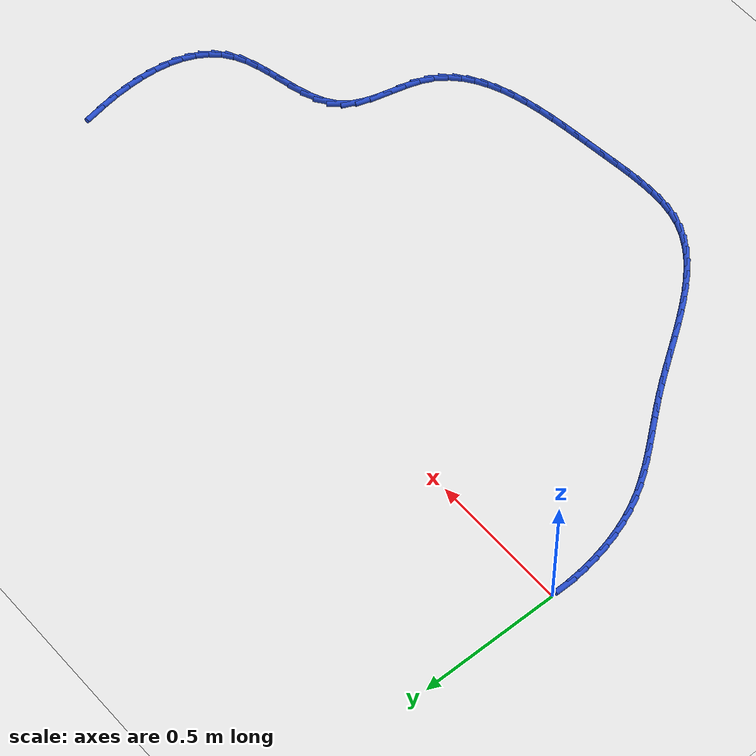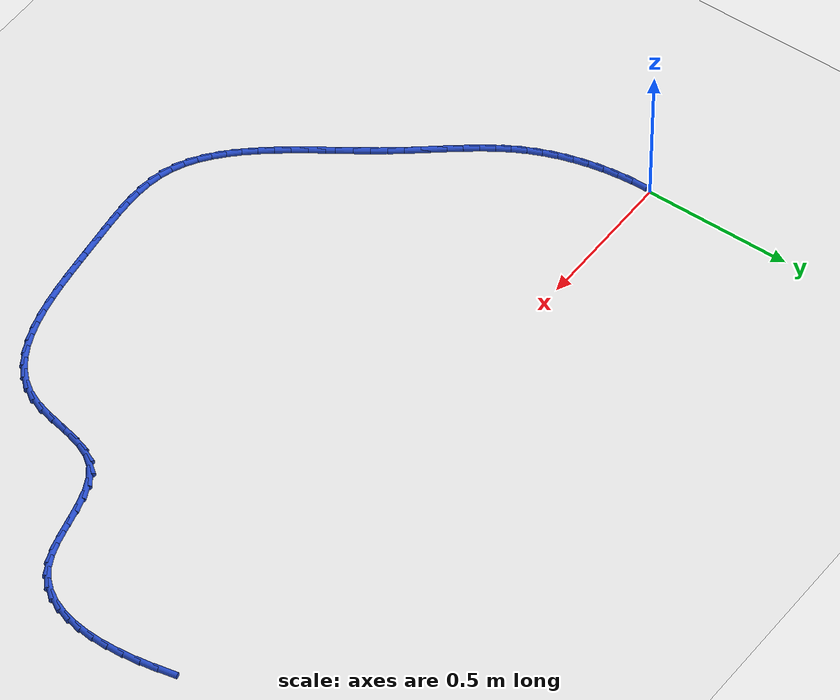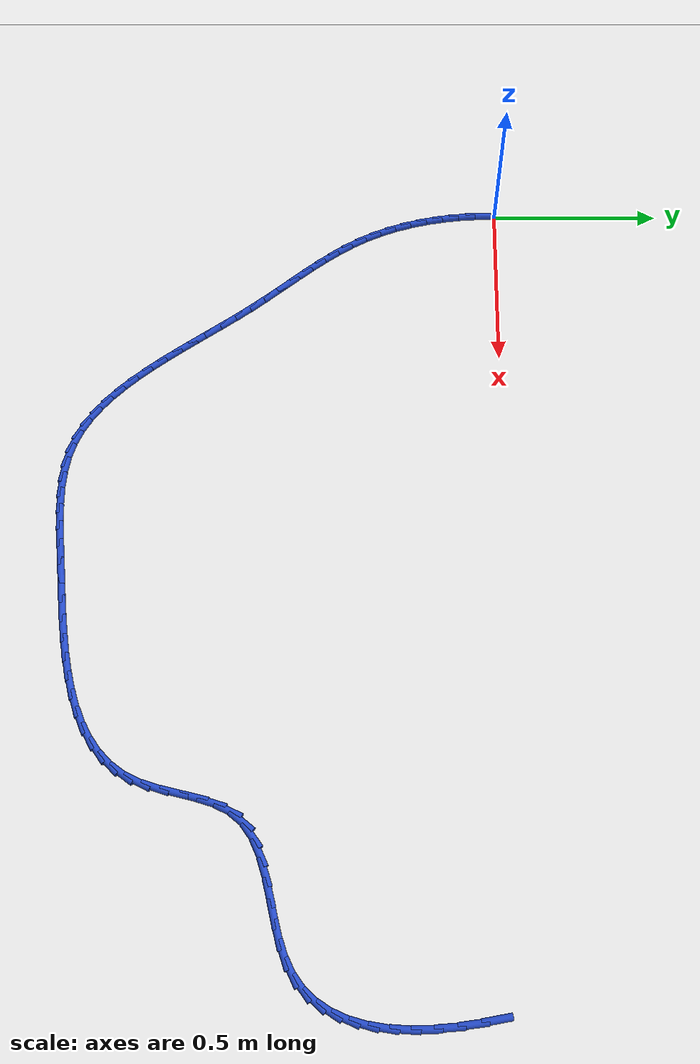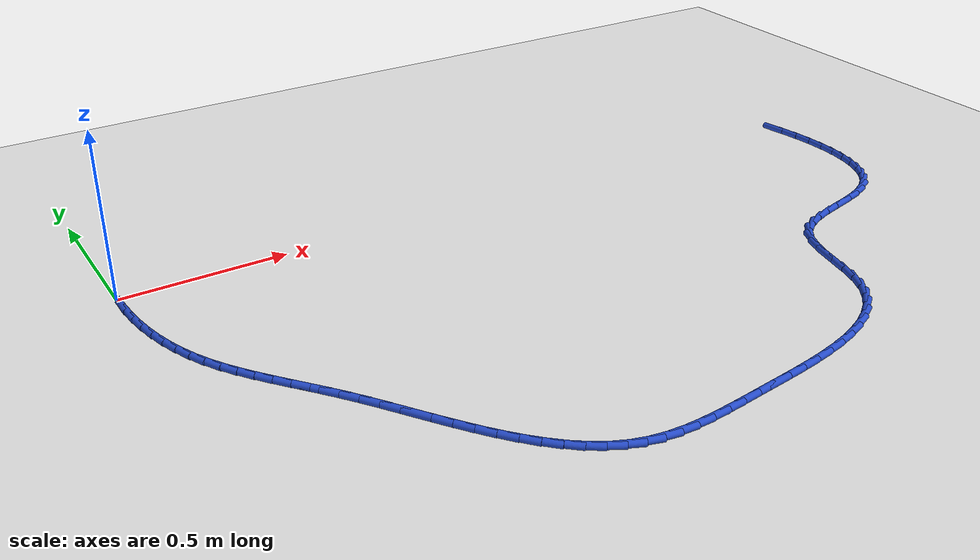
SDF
<sdf version="1.6">
 <world name="default">
  <model name="ground_plane">
   <static>1</static>
   <link name="link">
    <collision name="collision">
     <geometry><plane><normal>0 0 1</normal><size>100 100</size></plane></geometry>
     <surface><friction><ode><mu>100</mu><mu2>50</mu2></ode></friction></surface>
    </collision>
    <visual name="visual">
     <cast_shadows>0</cast_shadows>
     <geometry><plane><normal>0 0 1</normal><size>100 100</size></plane></geometry>
     <material>
      <script><uri>file://media/materials/scripts/gazebo.material</uri><name>Gazebo/WhiteGlow</name></script>
     </material>
    </visual>
   </link>
  </model>
  <model name="line">
   <link name="link_74">
    <pose>2.378009743541148 -0.061234600963595356 0.01 0 1.57 -1.391820217604714</pose>
    <collision name="collision">
     <geometry><cylinder><radius>0.01</radius><length>0.08</length></cylinder></geometry>
    </collision>
    <visual name="visual">
     <material>
      <script><name>Gazebo/Blue</name><uri>file://media/materials/scripts/gazebo.material</uri></script>
     </material>
     <geometry><cylinder><radius>0.01</radius><length>0.08</length></cylinder></geometry>
    </visual>
   </link>
   <link name="link_75">
    <pose>2.3886888158345 -0.12026372214924898 0.01 0 1.57 -1.4398469825482207</pose>
    <collision name="collision">
     <geometry><cylinder><radius>0.01</radius><length>0.08</length></cylinder></geometry>
    </collision>
    <visual name="visual">
     <material>
      <script><name>Gazebo/Blue</name><uri>file://media/materials/scripts/gazebo.material</uri></script>
     </material>
     <geometry><cylinder><radius>0.01</radius><length>0.08</length></cylinder></geometry>
    </visual>
   </link>
   <link name="link_76">
    <pose>2.396336699922956 -0.17833288971633787 0.01 0 1.57 -1.4959737840576777</pose>
    <collision name="collision">
     <geometry><cylinder><radius>0.01</radius><length>0.08</length></cylinder></geometry>
    </collision>
    <visual name="visual">
     <material>
      <script><name>Gazebo/Blue</name><uri>file://media/materials/scripts/gazebo.material</uri></script>
     </material>
     <geometry><cylinder><radius>0.01</radius><length>0.08</length></cylinder></geometry>
    </visual>
   </link>
   <link name="link_77">
    <pose>2.4005798901734186 -0.2349370729153797 0.01 0 1.57 -1.5622855437320609</pose>
    <collision name="collision">
     <geometry><cylinder><radius>0.01</radius><length>0.08</length></cylinder></geometry>
    </collision>
    <visual name="visual">
     <material>
      <script><name>Gazebo/Blue</name><uri>file://media/materials/scripts/gazebo.material</uri></script>
     </material>
     <geometry><cylinder><radius>0.01</radius><length>0.08</length></cylinder></geometry>
    </visual>
   </link>
   <link name="link_78">
    <pose>2.401044880952792 -0.2895712409968915 0.01 0 1.57 1.5002316210398952</pose>
    <collision name="collision">
     <geometry><cylinder><radius>0.01</radius><length>0.08</length></cylinder></geometry>
    </collision>
    <visual name="visual">
     <material>
      <script><name>Gazebo/Blue</name><uri>file://media/materials/scripts/gazebo.material</uri></script>
     </material>
     <geometry><cylinder><radius>0.01</radius><length>0.08</length></cylinder></geometry>
    </visual>
   </link>
   <link name="link_79">
    <pose>2.3973581666279786 -0.3417303632113934 0.01 0 1.57 1.4053426411994847</pose>
    <collision name="collision">
     <geometry><cylinder><radius>0.01</radius><length>0.08</length></cylinder></geometry>
    </collision>
    <visual name="visual">
     <material>
      <script><name>Gazebo/Blue</name><uri>file://media/materials/scripts/gazebo.material</uri></script>
     </material>
     <geometry><cylinder><radius>0.01</radius><length>0.08</length></cylinder></geometry>
    </visual>
   </link>
   <link name="link_80">
    <pose>2.3891462415658813 -0.39090940880940134 0.01 0 1.57 1.2913795425973227</pose>
    <collision name="collision">
     <geometry><cylinder><radius>0.01</radius><length>0.08</length></cylinder></geometry>
    </collision>
    <visual name="visual">
     <material>
      <script><name>Gazebo/Blue</name><uri>file://media/materials/scripts/gazebo.material</uri></script>
     </material>
     <geometry><cylinder><radius>0.01</radius><length>0.08</length></cylinder></geometry>
    </visual>
   </link>
   <link name="link_81">
    <pose>2.376035600133402 -0.43660334704143533 0.01 0 1.57 1.155622855037631</pose>
    <collision name="collision">
     <geometry><cylinder><radius>0.01</radius><length>0.08</length></cylinder></geometry>
    </collision>
    <visual name="visual">
     <material>
      <script><name>Gazebo/Blue</name><uri>file://media/materials/scripts/gazebo.material</uri></script>
     </material>
     <geometry><cylinder><radius>0.01</radius><length>0.08</length></cylinder></geometry>
    </visual>
   </link>
   <link name="link_82">
    <pose>2.3576527366974456 -0.47830714715801237 0.01 0 1.57 0.9973934146492227</pose>
    <collision name="collision">
     <geometry><cylinder><radius>0.01</radius><length>0.08</length></cylinder></geometry>
    </collision>
    <visual name="visual">
     <material>
      <script><name>Gazebo/Blue</name><uri>file://media/materials/scripts/gazebo.material</uri></script>
     </material>
     <geometry><cylinder><radius>0.01</radius><length>0.08</length></cylinder></geometry>
    </visual>
   </link>
   <link name="link_83">
    <pose>2.3336241456249143 -0.5155157784096499 0.01 0 1.57 0.8200893031991454</pose>
    <collision name="collision">
     <geometry><cylinder><radius>0.01</radius><length>0.08</length></cylinder></geometry>
    </collision>
    <visual name="visual">
     <material>
      <script><name>Gazebo/Blue</name><uri>file://media/materials/scripts/gazebo.material</uri></script>
     </material>
     <geometry><cylinder><radius>0.01</radius><length>0.08</length></cylinder></geometry>
    </visual>
   </link>
   <link name="link_84">
    <pose>2.3035763212827094 -0.5477242100468672 0.01 0 1.57 0.6323940080478144</pose>
    <collision name="collision">
     <geometry><cylinder><radius>0.01</radius><length>0.08</length></cylinder></geometry>
    </collision>
    <visual name="visual">
     <material>
      <script><name>Gazebo/Blue</name><uri>file://media/materials/scripts/gazebo.material</uri></script>
     </material>
     <geometry><cylinder><radius>0.01</radius><length>0.08</length></cylinder></geometry>
    </visual>
   </link>
   <link name="link_85">
    <pose>2.267135758037738 -0.5744274113201818 0.01 0 1.57 0.4510348395678551</pose>
    <collision name="collision">
     <geometry><cylinder><radius>0.01</radius><length>0.08</length></cylinder></geometry>
    </collision>
    <visual name="visual">
     <material>
      <script><name>Gazebo/Blue</name><uri>file://media/materials/scripts/gazebo.material</uri></script>
     </material>
     <geometry><cylinder><radius>0.01</radius><length>0.08</length></cylinder></geometry>
    </visual>
   </link>
   <link name="link_86">
    <pose>2.224087384193141 -0.5952771169971801 0.01 0 1.57 0.321141715732066</pose>
    <collision name="collision">
     <geometry><cylinder><radius>0.01</radius><length>0.08</length></cylinder></geometry>
    </collision>
    <visual name="visual">
     <material>
      <script><name>Gazebo/Blue</name><uri>file://media/materials/scripts/gazebo.material</uri></script>
     </material>
     <geometry><cylinder><radius>0.01</radius><length>0.08</length></cylinder></geometry>
    </visual>
   </link>
   <link name="link_87">
    <pose>2.1756850321788646 -0.6113784973935517 0.01 0 1.57 0.25078579016365227</pose>
    <collision name="collision">
     <geometry><cylinder><radius>0.01</radius><length>0.08</length></cylinder></geometry>
    </collision>
    <visual name="visual">
     <material>
      <script><name>Gazebo/Blue</name><uri>file://media/materials/scripts/gazebo.material</uri></script>
     </material>
     <geometry><cylinder><radius>0.01</radius><length>0.08</length></cylinder></geometry>
    </visual>
   </link>
   <link name="link_88">
    <pose>2.1239787605830944 -0.624624564169842 0.01 0 1.57 0.22808580606963388</pose>
    <collision name="collision">
     <geometry><cylinder><radius>0.01</radius><length>0.08</length></cylinder></geometry>
    </collision>
    <visual name="visual">
     <material>
      <script><name>Gazebo/Blue</name><uri>file://media/materials/scripts/gazebo.material</uri></script>
     </material>
     <geometry><cylinder><radius>0.01</radius><length>0.08</length></cylinder></geometry>
    </visual>
   </link>
   <link name="link_89">
    <pose>2.071026497023882 -0.6369161151501216 0.01 0 1.57 0.24863512679720598</pose>
    <collision name="collision">
     <geometry><cylinder><radius>0.01</radius><length>0.08</length></cylinder></geometry>
    </collision>
    <visual name="visual">
     <material>
      <script><name>Gazebo/Blue</name><uri>file://media/materials/scripts/gazebo.material</uri></script>
     </material>
     <geometry><cylinder><radius>0.01</radius><length>0.08</length></cylinder></geometry>
    </visual>
   </link>
   <link name="link_90">
    <pose>2.0188861691192757 -0.6501539481584594 0.01 0 1.57 0.315553263761147</pose>
    <collision name="collision">
     <geometry><cylinder><radius>0.01</radius><length>0.08</length></cylinder></geometry>
    </collision>
    <visual name="visual">
     <material>
      <script><name>Gazebo/Blue</name><uri>file://media/materials/scripts/gazebo.material</uri></script>
     </material>
     <geometry><cylinder><radius>0.01</radius><length>0.08</length></cylinder></geometry>
    </visual>
   </link>
   <link name="link_91">
    <pose>1.9696157044873275 -0.6662388610189253 0.01 0 1.57 0.43920819011402085</pose>
    <collision name="collision">
     <geometry><cylinder><radius>0.01</radius><length>0.08</length></cylinder></geometry>
    </collision>
    <visual name="visual">
     <material>
      <script><name>Gazebo/Blue</name><uri>file://media/materials/scripts/gazebo.material</uri></script>
     </material>
     <geometry><cylinder><radius>0.01</radius><length>0.08</length></cylinder></geometry>
    </visual>
   </link>
   <link name="link_92">
    <pose>1.9252730307460855 -0.687071651555589 0.01 0 1.57 0.6342505811792313</pose>
    <collision name="collision">
     <geometry><cylinder><radius>0.01</radius><length>0.08</length></cylinder></geometry>
    </collision>
    <visual name="visual">
     <material>
      <script><name>Gazebo/Blue</name><uri>file://media/materials/scripts/gazebo.material</uri></script>
     </material>
     <geometry><cylinder><radius>0.01</radius><length>0.08</length></cylinder></geometry>
    </visual>
   </link>
   <link name="link_93">
    <pose>1.8879160755136017 -0.7145531175925198 0.01 0 1.57 0.899842633633466</pose>
    <collision name="collision">
     <geometry><cylinder><radius>0.01</radius><length>0.08</length></cylinder></geometry>
    </collision>
    <visual name="visual">
     <material>
      <script><name>Gazebo/Blue</name><uri>file://media/materials/scripts/gazebo.material</uri></script>
     </material>
     <geometry><cylinder><radius>0.01</radius><length>0.08</length></cylinder></geometry>
    </visual>
   </link>
   <link name="link_94">
    <pose>1.8594365817306253 -0.7504301893430133 0.01 0 1.57 1.1347993794142137</pose>
    <collision name="collision">
     <geometry><cylinder><radius>0.01</radius><length>0.08</length></cylinder></geometry>
    </collision>
    <visual name="visual">
     <material>
      <script><name>Gazebo/Blue</name><uri>file://media/materials/scripts/gazebo.material</uri></script>
     </material>
     <geometry><cylinder><radius>0.01</radius><length>0.08</length></cylinder></geometry>
    </visual>
   </link>
   <link name="link_95">
    <pose>1.8391202410029486 -0.794036897714697 0.01 0 1.57 1.2735140064121915</pose>
    <collision name="collision">
     <geometry><cylinder><radius>0.01</radius><length>0.08</length></cylinder></geometry>
    </collision>
    <visual name="visual">
     <material>
      <script><name>Gazebo/Blue</name><uri>file://media/materials/scripts/gazebo.material</uri></script>
     </material>
     <geometry><cylinder><radius>0.01</radius><length>0.08</length></cylinder></geometry>
    </visual>
   </link>
   <link name="link_96">
    <pose>1.8241837057138568 -0.8427915848348564 0.01 0 1.57 1.3335426657816207</pose>
    <collision name="collision">
     <geometry><cylinder><radius>0.01</radius><length>0.08</length></cylinder></geometry>
    </collision>
    <visual name="visual">
     <material>
      <script><name>Gazebo/Blue</name><uri>file://media/materials/scripts/gazebo.material</uri></script>
     </material>
     <geometry><cylinder><radius>0.01</radius><length>0.08</length></cylinder></geometry>
    </visual>
   </link>
   <link name="link_97">
    <pose>1.8117866418876283 -0.8940598301149262 0.01 0 1.57 1.3274545606205175</pose>
    <collision name="collision">
     <geometry><cylinder><radius>0.01</radius><length>0.08</length></cylinder></geometry>
    </collision>
    <visual name="visual">
     <material>
      <script><name>Gazebo/Blue</name><uri>file://media/materials/scripts/gazebo.material</uri></script>
     </material>
     <geometry><cylinder><radius>0.01</radius><length>0.08</length></cylinder></geometry>
    </visual>
   </link>
   <link name="link_98">
    <pose>1.7990887155485418 -0.945207212966339 0.01 0 1.57 1.254478312544658</pose>
    <collision name="collision">
     <geometry><cylinder><radius>0.01</radius><length>0.08</length></cylinder></geometry>
    </collision>
    <visual name="visual">
     <material>
      <script><name>Gazebo/Blue</name><uri>file://media/materials/scripts/gazebo.material</uri></script>
     </material>
     <geometry><cylinder><radius>0.01</radius><length>0.08</length></cylinder></geometry>
    </visual>
   </link>
   <link name="link_99">
    <pose>1.783249592720873 -0.9935993128005292 0.01 0 1.57 1.1074145235033779</pose>
    <collision name="collision">
     <geometry><cylinder><radius>0.01</radius><length>0.08</length></cylinder></geometry>
    </collision>
    <visual name="visual">
     <material>
      <script><name>Gazebo/Blue</name><uri>file://media/materials/scripts/gazebo.material</uri></script>
     </material>
     <geometry><cylinder><radius>0.01</radius><length>0.08</length></cylinder></geometry>
    </visual>
   </link>
   <link name="link_100">
    <pose>1.761658826751372 -1.036809554747088 0.01 0 1.57 0.9317533576863597</pose>
    <collision name="collision">
     <geometry><cylinder><radius>0.01</radius><length>0.08</length></cylinder></geometry>
    </collision>
    <visual name="visual">
     <material>
      <script><name>Gazebo/Blue</name><uri>file://media/materials/scripts/gazebo.material</uri></script>
     </material>
     <geometry><cylinder><radius>0.01</radius><length>0.08</length></cylinder></geometry>
    </visual>
   </link>
   <link name="link_101">
    <pose>1.7337987114824858 -1.0743034524012531 0.01 0 1.57 0.7660072758027199</pose>
    <collision name="collision">
     <geometry><cylinder><radius>0.01</radius><length>0.08</length></cylinder></geometry>
    </collision>
    <visual name="visual">
     <material>
      <script><name>Gazebo/Blue</name><uri>file://media/materials/scripts/gazebo.material</uri></script>
     </material>
     <geometry><cylinder><radius>0.01</radius><length>0.08</length></cylinder></geometry>
    </visual>
   </link>
   <link name="link_102">
    <pose>1.7002693021657285 -1.1065571097653393 0.01 0 1.57 0.6191515063445285</pose>
    <collision name="collision">
     <geometry><cylinder><radius>0.01</radius><length>0.08</length></cylinder></geometry>
    </collision>
    <visual name="visual">
     <material>
      <script><name>Gazebo/Blue</name><uri>file://media/materials/scripts/gazebo.material</uri></script>
     </material>
     <geometry><cylinder><radius>0.01</radius><length>0.08</length></cylinder></geometry>
    </visual>
   </link>
   <link name="link_103">
    <pose>1.6616811620199143 -1.1340561313046946 0.01 0 1.57 0.49496025301015073</pose>
    <collision name="collision">
     <geometry><cylinder><radius>0.01</radius><length>0.08</length></cylinder></geometry>
    </collision>
    <visual name="visual">
     <material>
      <script><name>Gazebo/Blue</name><uri>file://media/materials/scripts/gazebo.material</uri></script>
     </material>
     <geometry><cylinder><radius>0.01</radius><length>0.08</length></cylinder></geometry>
    </visual>
   </link>
   <link name="link_104">
    <pose>1.6186448542638605 -1.1572861214846684 0.01 0 1.57 0.3932589532056553</pose>
    <collision name="collision">
     <geometry><cylinder><radius>0.01</radius><length>0.08</length></cylinder></geometry>
    </collision>
    <visual name="visual">
     <material>
      <script><name>Gazebo/Blue</name><uri>file://media/materials/scripts/gazebo.material</uri></script>
     </material>
     <geometry><cylinder><radius>0.01</radius><length>0.08</length></cylinder></geometry>
    </visual>
   </link>
   <link name="link_105">
    <pose>1.5717709421163792 -1.17673268477061 0.01 0 1.57 0.31180966928443943</pose>
    <collision name="collision">
     <geometry><cylinder><radius>0.01</radius><length>0.08</length></cylinder></geometry>
    </collision>
    <visual name="visual">
     <material>
      <script><name>Gazebo/Blue</name><uri>file://media/materials/scripts/gazebo.material</uri></script>
     </material>
     <geometry><cylinder><radius>0.01</radius><length>0.08</length></cylinder></geometry>
    </visual>
   </link>
   <link name="link_106">
    <pose>1.5216699887962863 -1.192881425627868 0.01 0 1.57 0.2477825932578606</pose>
    <collision name="collision">
     <geometry><cylinder><radius>0.01</radius><length>0.08</length></cylinder></geometry>
    </collision>
    <visual name="visual">
     <material>
      <script><name>Gazebo/Blue</name><uri>file://media/materials/scripts/gazebo.material</uri></script>
     </material>
     <geometry><cylinder><radius>0.01</radius><length>0.08</length></cylinder></geometry>
    </visual>
   </link>
   <link name="link_107">
    <pose>1.4689525575223956 -1.2062179485217932 0.01 0 1.57 0.1985416255472093</pose>
    <collision name="collision">
     <geometry><cylinder><radius>0.01</radius><length>0.08</length></cylinder></geometry>
    </collision>
    <visual name="visual">
     <material>
      <script><name>Gazebo/Blue</name><uri>file://media/materials/scripts/gazebo.material</uri></script>
     </material>
     <geometry><cylinder><radius>0.01</radius><length>0.08</length></cylinder></geometry>
    </visual>
   </link>
   <link name="link_108">
    <pose>1.4142292115135224 -1.2172278579177331 0.01 0 1.57 0.16195309480207934</pose>
    <collision name="collision">
     <geometry><cylinder><radius>0.01</radius><length>0.08</length></cylinder></geometry>
    </collision>
    <visual name="visual">
     <material>
      <script><name>Gazebo/Blue</name><uri>file://media/materials/scripts/gazebo.material</uri></script>
     </material>
     <geometry><cylinder><radius>0.01</radius><length>0.08</length></cylinder></geometry>
    </visual>
   </link>
   <link name="link_109">
    <pose>1.358110513988482 -1.226396758281038 0.01 0 1.57 0.13645803134163959</pose>
    <collision name="collision">
     <geometry><cylinder><radius>0.01</radius><length>0.08</length></cylinder></geometry>
    </collision>
    <visual name="visual">
     <material>
      <script><name>Gazebo/Blue</name><uri>file://media/materials/scripts/gazebo.material</uri></script>
     </material>
     <geometry><cylinder><radius>0.01</radius><length>0.08</length></cylinder></geometry>
    </visual>
   </link>
   <link name="link_110">
    <pose>1.3012070281660872 -1.2342102540770563 0.01 0 1.57 0.12105850203619228</pose>
    <collision name="collision">
     <geometry><cylinder><radius>0.01</radius><length>0.08</length></cylinder></geometry>
    </collision>
    <visual name="visual">
     <material>
      <script><name>Gazebo/Blue</name><uri>file://media/materials/scripts/gazebo.material</uri></script>
     </material>
     <geometry><cylinder><radius>0.01</radius><length>0.08</length></cylinder></geometry>
    </visual>
   </link>
   <link name="link_111">
    <pose>1.2441293172651544 -1.241153949771138 0.01 0 1.57 0.11529398835457075</pose>
    <collision name="collision">
     <geometry><cylinder><radius>0.01</radius><length>0.08</length></cylinder></geometry>
    </collision>
    <visual name="visual">
     <material>
      <script><name>Gazebo/Blue</name><uri>file://media/materials/scripts/gazebo.material</uri></script>
     </material>
     <geometry><cylinder><radius>0.01</radius><length>0.08</length></cylinder></geometry>
    </visual>
   </link>
   <link name="link_112">
    <pose>1.187487944504498 -1.247713449828631 0.01 0 1.57 0.11735394909443855</pose>
    <collision name="collision">
     <geometry><cylinder><radius>0.01</radius><length>0.08</length></cylinder></geometry>
    </collision>
    <visual name="visual">
     <material>
      <script><name>Gazebo/Blue</name><uri>file://media/materials/scripts/gazebo.material</uri></script>
     </material>
     <geometry><cylinder><radius>0.01</radius><length>0.08</length></cylinder></geometry>
    </visual>
   </link>
   <link name="link_113">
    <pose>1.1318563985577608 -1.2542721678975095 0.01 0 1.57 0.11253120639233641</pose>
    <collision name="collision">
     <geometry><cylinder><radius>0.01</radius><length>0.08</length></cylinder></geometry>
    </collision>
    <visual name="visual">
     <material>
      <script><name>Gazebo/Blue</name><uri>file://media/materials/scripts/gazebo.material</uri></script>
     </material>
     <geometry><cylinder><radius>0.01</radius><length>0.08</length></cylinder></geometry>
    </visual>
   </link>
   <link name="link_114">
    <pose>1.077517709391928 -1.260412908676638 0.01 0 1.57 0.09289275293433225</pose>
    <collision name="collision">
     <geometry><cylinder><radius>0.01</radius><length>0.08</length></cylinder></geometry>
    </collision>
    <visual name="visual">
     <material>
      <script><name>Gazebo/Blue</name><uri>file://media/materials/scripts/gazebo.material</uri></script>
     </material>
     <geometry><cylinder><radius>0.01</radius><length>0.08</length></cylinder></geometry>
    </visual>
   </link>
   <link name="link_115">
    <pose>1.0246179929128165 -1.265341092334437 0.01 0 1.57 0.05681895445299467</pose>
    <collision name="collision">
     <geometry><cylinder><radius>0.01</radius><length>0.08</length></cylinder></geometry>
    </collision>
    <visual name="visual">
     <material>
      <script><name>Gazebo/Blue</name><uri>file://media/materials/scripts/gazebo.material</uri></script>
     </material>
     <geometry><cylinder><radius>0.01</radius><length>0.08</length></cylinder></geometry>
    </visual>
   </link>
   <link name="link_116">
    <pose>0.9733025611390732 -1.268259923236355 0.01 0 1.57 0.0022724698979130382</pose>
    <collision name="collision">
     <geometry><cylinder><radius>0.01</radius><length>0.08</length></cylinder></geometry>
    </collision>
    <visual name="visual">
     <material>
      <script><name>Gazebo/Blue</name><uri>file://media/materials/scripts/gazebo.material</uri></script>
     </material>
     <geometry><cylinder><radius>0.01</radius><length>0.08</length></cylinder></geometry>
    </visual>
   </link>
   <link name="link_117">
    <pose>0.9237167260893429 -1.268372605747837 0.01 0 1.57 -0.07302426480396994</pose>
    <collision name="collision">
     <geometry><cylinder><radius>0.01</radius><length>0.08</length></cylinder></geometry>
    </collision>
    <visual name="visual">
     <material>
      <script><name>Gazebo/Blue</name><uri>file://media/materials/scripts/gazebo.material</uri></script>
     </material>
     <geometry><cylinder><radius>0.01</radius><length>0.08</length></cylinder></geometry>
    </visual>
   </link>
   <link name="link_118">
    <pose>0.8760057997822687 -1.264882344234331 0.01 0 1.57 -0.1709964876826887</pose>
    <collision name="collision">
     <geometry><cylinder><radius>0.01</radius><length>0.08</length></cylinder></geometry>
    </collision>
    <visual name="visual">
     <material>
      <script><name>Gazebo/Blue</name><uri>file://media/materials/scripts/gazebo.material</uri></script>
     </material>
     <geometry><cylinder><radius>0.01</radius><length>0.08</length></cylinder></geometry>
    </visual>
   </link>
   <link name="link_119">
    <pose>0.8303150942364971 -1.2569923430612833 0.01 0 1.57 -0.29194399562765355</pose>
    <collision name="collision">
     <geometry><cylinder><radius>0.01</radius><length>0.08</length></cylinder></geometry>
    </collision>
    <visual name="visual">
     <material>
      <script><name>Gazebo/Blue</name><uri>file://media/materials/scripts/gazebo.material</uri></script>
     </material>
     <geometry><cylinder><radius>0.01</radius><length>0.08</length></cylinder></geometry>
    </visual>
   </link>
   <link name="link_120">
    <pose>0.786788472711296 -1.2439112384430773 0.01 0 1.57 -0.42292682685761745</pose>
    <collision name="collision">
     <geometry><cylinder><radius>0.01</radius><length>0.08</length></cylinder></geometry>
    </collision>
    <visual name="visual">
     <material>
      <script><name>Gazebo/Blue</name><uri>file://media/materials/scripts/gazebo.material</uri></script>
     </material>
     <geometry><cylinder><radius>0.01</radius><length>0.08</length></cylinder></geometry>
    </visual>
   </link>
   <link name="link_121">
    <pose>0.7454479822138149 -1.2253043935638745 0.01 0 1.57 -0.5416320747556213</pose>
    <collision name="collision">
     <geometry><cylinder><radius>0.01</radius><length>0.08</length></cylinder></geometry>
    </collision>
    <visual name="visual">
     <material>
      <script><name>Gazebo/Blue</name><uri>file://media/materials/scripts/gazebo.material</uri></script>
     </material>
     <geometry><cylinder><radius>0.01</radius><length>0.08</length></cylinder></geometry>
    </visual>
   </link>
   <link name="link_122">
    <pose>0.7061034742552204 -1.201632758437954 0.01 0 1.57 -0.6439386103067205</pose>
    <collision name="collision">
     <geometry><cylinder><radius>0.01</radius><length>0.08</length></cylinder></geometry>
    </collision>
    <visual name="visual">
     <material>
      <script><name>Gazebo/Blue</name><uri>file://media/materials/scripts/gazebo.material</uri></script>
     </material>
     <geometry><cylinder><radius>0.01</radius><length>0.08</length></cylinder></geometry>
    </visual>
   </link>
   <link name="link_123">
    <pose>0.6685435113847266 -1.1734371020110752 0.01 0 1.57 -0.7295931301721328</pose>
    <collision name="collision">
     <geometry><cylinder><radius>0.01</radius><length>0.08</length></cylinder></geometry>
    </collision>
    <visual name="visual">
     <material>
      <script><name>Gazebo/Blue</name><uri>file://media/materials/scripts/gazebo.material</uri></script>
     </material>
     <geometry><cylinder><radius>0.01</radius><length>0.08</length></cylinder></geometry>
    </visual>
   </link>
   <link name="link_124">
    <pose>0.6325566561515501 -1.141258193228998 0.01 0 1.57 -0.7995787883806944</pose>
    <collision name="collision">
     <geometry><cylinder><radius>0.01</radius><length>0.08</length></cylinder></geometry>
    </collision>
    <visual name="visual">
     <material>
      <script><name>Gazebo/Blue</name><uri>file://media/materials/scripts/gazebo.material</uri></script>
     </material>
     <geometry><cylinder><radius>0.01</radius><length>0.08</length></cylinder></geometry>
    </visual>
   </link>
   <link name="link_125">
    <pose>0.5979314711049069 -1.1056368010374822 0.01 0 1.57 -0.8553987476555952</pose>
    <collision name="collision">
     <geometry><cylinder><radius>0.01</radius><length>0.08</length></cylinder></geometry>
    </collision>
    <visual name="visual">
     <material>
      <script><name>Gazebo/Blue</name><uri>file://media/materials/scripts/gazebo.material</uri></script>
     </material>
     <geometry><cylinder><radius>0.01</radius><length>0.08</length></cylinder></geometry>
    </visual>
   </link>
   <link name="link_126">
    <pose>0.564456518794011 -1.0671136943822863 0.01 0 1.57 -0.8986122030748501</pose>
    <collision name="collision">
     <geometry><cylinder><radius>0.01</radius><length>0.08</length></cylinder></geometry>
    </collision>
    <visual name="visual">
     <material>
      <script><name>Gazebo/Blue</name><uri>file://media/materials/scripts/gazebo.material</uri></script>
     </material>
     <geometry><cylinder><radius>0.01</radius><length>0.08</length></cylinder></geometry>
    </visual>
   </link>
   <link name="link_127">
    <pose>0.5319203617680798 -1.0262296422091721 0.01 0 1.57 -0.9305910239438986</pose>
    <collision name="collision">
     <geometry><cylinder><radius>0.01</radius><length>0.08</length></cylinder></geometry>
    </collision>
    <visual name="visual">
     <material>
      <script><name>Gazebo/Blue</name><uri>file://media/materials/scripts/gazebo.material</uri></script>
     </material>
     <geometry><cylinder><radius>0.01</radius><length>0.08</length></cylinder></geometry>
    </visual>
   </link>
   <link name="link_128">
    <pose>0.5001115625763272 -0.983525413463897 0.01 0 1.57 -0.9524161839190312</pose>
    <collision name="collision">
     <geometry><cylinder><radius>0.01</radius><length>0.08</length></cylinder></geometry>
    </collision>
    <visual name="visual">
     <material>
      <script><name>Gazebo/Blue</name><uri>file://media/materials/scripts/gazebo.material</uri></script>
     </material>
     <geometry><cylinder><radius>0.01</radius><length>0.08</length></cylinder></geometry>
    </visual>
   </link>
   <link name="link_129">
    <pose>0.46881868376796954 -0.9395417770922219 0.01 0 1.57 -0.9648463662957337</pose>
    <collision name="collision">
     <geometry><cylinder><radius>0.01</radius><length>0.08</length></cylinder></geometry>
    </collision>
    <visual name="visual">
     <material>
      <script><name>Gazebo/Blue</name><uri>file://media/materials/scripts/gazebo.material</uri></script>
     </material>
     <geometry><cylinder><radius>0.01</radius><length>0.08</length></cylinder></geometry>
    </visual>
   </link>
   <link name="link_130">
    <pose>0.43783028789222295 -0.8948195020399069 0.01 0 1.57 -0.968316255176137</pose>
    <collision name="collision">
     <geometry><cylinder><radius>0.01</radius><length>0.08</length></cylinder></geometry>
    </collision>
    <visual name="visual">
     <material>
      <script><name>Gazebo/Blue</name><uri>file://media/materials/scripts/gazebo.material</uri></script>
     </material>
     <geometry><cylinder><radius>0.01</radius><length>0.08</length></cylinder></geometry>
    </visual>
   </link>
   <link name="link_131">
    <pose>0.4069349374983019 -0.8498993572527104 0.01 0 1.57 -0.9629416554866803</pose>
    <collision name="collision">
     <geometry><cylinder><radius>0.01</radius><length>0.08</length></cylinder></geometry>
    </collision>
    <visual name="visual">
     <material>
      <script><name>Gazebo/Blue</name><uri>file://media/materials/scripts/gazebo.material</uri></script>
     </material>
     <geometry><cylinder><radius>0.01</radius><length>0.08</length></cylinder></geometry>
    </visual>
   </link>
   <link name="link_132">
    <pose>0.375921195135423 -0.8053221116763934 0.01 0 1.57 -0.948520967493057</pose>
    <collision name="collision">
     <geometry><cylinder><radius>0.01</radius><length>0.08</length></cylinder></geometry>
    </collision>
    <visual name="visual">
     <material>
      <script><name>Gazebo/Blue</name><uri>file://media/materials/scripts/gazebo.material</uri></script>
     </material>
     <geometry><cylinder><radius>0.01</radius><length>0.08</length></cylinder></geometry>
    </visual>
   </link>
   <link name="link_133">
    <pose>0.3445776233528008 -0.7616285342567143 0.01 0 1.57 -0.9251674796292256</pose>
    <collision name="collision">
     <geometry><cylinder><radius>0.01</radius><length>0.08</length></cylinder></geometry>
    </collision>
    <visual name="visual">
     <material>
      <script><name>Gazebo/Blue</name><uri>file://media/materials/scripts/gazebo.material</uri></script>
     </material>
     <geometry><cylinder><radius>0.01</radius><length>0.08</length></cylinder></geometry>
    </visual>
   </link>
   <link name="link_134">
    <pose>0.3127124145851005 -0.7193293923537596 0.01 0 1.57 -0.9032681090136822</pose>
    <collision name="collision">
     <geometry><cylinder><radius>0.01</radius><length>0.08</length></cylinder></geometry>
    </collision>
    <visual name="visual">
     <material>
      <script><name>Gazebo/Blue</name><uri>file://media/materials/scripts/gazebo.material</uri></script>
     </material>
     <geometry><cylinder><radius>0.01</radius><length>0.08</length></cylinder></geometry>
    </visual>
   </link>
   <link name="link_135">
    <pose>0.2804687631474865 -0.678423448932841 0.01 0 1.57 -0.89234719325799</pose>
    <collision name="collision">
     <geometry><cylinder><radius>0.01</radius><length>0.08</length></cylinder></geometry>
    </collision>
    <visual name="visual">
     <material>
      <script><name>Gazebo/Blue</name><uri>file://media/materials/scripts/gazebo.material</uri></script>
     </material>
     <geometry><cylinder><radius>0.01</radius><length>0.08</length></cylinder></geometry>
    </visual>
   </link>
   <link name="link_136">
    <pose>0.2482706397592474 -0.6384803387625964 0.01 0 1.57 -0.8932649401715305</pose>
    <collision name="collision">
     <geometry><cylinder><radius>0.01</radius><length>0.08</length></cylinder></geometry>
    </collision>
    <visual name="visual">
     <material>
      <script><name>Gazebo/Blue</name><uri>file://media/materials/scripts/gazebo.material</uri></script>
     </material>
     <geometry><cylinder><radius>0.01</radius><length>0.08</length></cylinder></geometry>
    </visual>
   </link>
   <link name="link_137">
    <pose>0.2165506938185523 -0.5990564324421604 0.01 0 1.57 -0.9065173802395431</pose>
    <collision name="collision">
     <geometry><cylinder><radius>0.01</radius><length>0.08</length></cylinder></geometry>
    </collision>
    <visual name="visual">
     <material>
      <script><name>Gazebo/Blue</name><uri>file://media/materials/scripts/gazebo.material</uri></script>
     </material>
     <geometry><cylinder><radius>0.01</radius><length>0.08</length></cylinder></geometry>
    </visual>
   </link>
   <link name="link_138">
    <pose>0.1857415747235706 -0.5597081005706686 0.01 0 1.57 -0.9324985043081744</pose>
    <collision name="collision">
     <geometry><cylinder><radius>0.01</radius><length>0.08</length></cylinder></geometry>
    </collision>
    <visual name="visual">
     <material>
      <script><name>Gazebo/Blue</name><uri>file://media/materials/scripts/gazebo.material</uri></script>
     </material>
     <geometry><cylinder><radius>0.01</radius><length>0.08</length></cylinder></geometry>
    </visual>
   </link>
   <link name="link_139">
    <pose>0.15627593187247008 -0.5199917137472544 0.01 0 1.57 -0.9714223082421337</pose>
    <collision name="collision">
     <geometry><cylinder><radius>0.01</radius><length>0.08</length></cylinder></geometry>
    </collision>
    <visual name="visual">
     <material>
      <script><name>Gazebo/Blue</name><uri>file://media/materials/scripts/gazebo.material</uri></script>
     </material>
     <geometry><cylinder><radius>0.01</radius><length>0.08</length></cylinder></geometry>
    </visual>
   </link>
   <link name="link_140">
    <pose>0.1285864146634204 -0.47946364257105345 0.01 0 1.57 -1.0231805596532764</pose>
    <collision name="collision">
     <geometry><cylinder><radius>0.01</radius><length>0.08</length></cylinder></geometry>
    </collision>
    <visual name="visual">
     <material>
      <script><name>Gazebo/Blue</name><uri>file://media/materials/scripts/gazebo.material</uri></script>
     </material>
     <geometry><cylinder><radius>0.01</radius><length>0.08</length></cylinder></geometry>
    </visual>
   </link>
   <link name="link_141">
    <pose>0.10310567249458943 -0.43768025764119917 0.01 0 1.57 -1.087091099264946</pose>
    <collision name="collision">
     <geometry><cylinder><radius>0.01</radius><length>0.08</length></cylinder></geometry>
    </collision>
    <visual name="visual">
     <material>
      <script><name>Gazebo/Blue</name><uri>file://media/materials/scripts/gazebo.material</uri></script>
     </material>
     <geometry><cylinder><radius>0.01</radius><length>0.08</length></cylinder></geometry>
    </visual>
   </link>
   <link name="link_142">
    <pose>0.08026456291683964 -0.394200666250454 0.01 0 1.57 -1.1569428647616733</pose>
    <collision name="collision">
     <geometry><cylinder><radius>0.01</radius><length>0.08</length></cylinder></geometry>
    </collision>
    <visual name="visual">
     <material>
      <script><name>Gazebo/Blue</name><uri>file://media/materials/scripts/gazebo.material</uri></script>
     </material>
     <geometry><cylinder><radius>0.01</radius><length>0.08</length></cylinder></geometry>
    </visual>
   </link>
   <link name="link_143">
    <pose>0.06033524465086518 -0.34882635687859276 0.01 0 1.57 -1.2234982542315804</pose>
    <collision name="collision">
     <geometry><cylinder><radius>0.01</radius><length>0.08</length></cylinder></geometry>
    </collision>
    <visual name="visual">
     <material>
      <script><name>Gazebo/Blue</name><uri>file://media/materials/scripts/gazebo.material</uri></script>
     </material>
     <geometry><cylinder><radius>0.01</radius><length>0.08</length></cylinder></geometry>
    </visual>
   </link>
   <link name="link_144">
    <pose>0.04330881941518137 -0.3017880771860242 0.01 0 1.57 -1.2863070565869366</pose>
    <collision name="collision">
     <geometry><cylinder><radius>0.01</radius><length>0.08</length></cylinder></geometry>
    </collision>
    <visual name="visual">
     <material>
      <script><name>Gazebo/Blue</name><uri>file://media/materials/scripts/gazebo.material</uri></script>
     </material>
     <geometry><cylinder><radius>0.01</radius><length>0.08</length></cylinder></geometry>
    </visual>
   </link>
   <link name="link_145">
    <pose>0.029147590394839 -0.25336055891746806 0.01 0 1.57 -1.3458964440253274</pose>
    <collision name="collision">
     <geometry><cylinder><radius>0.01</radius><length>0.08</length></cylinder></geometry>
    </collision>
    <visual name="visual">
     <material>
      <script><name>Gazebo/Blue</name><uri>file://media/materials/scripts/gazebo.material</uri></script>
     </material>
     <geometry><cylinder><radius>0.01</radius><length>0.08</length></cylinder></geometry>
    </visual>
   </link>
   <link name="link_146">
    <pose>0.017813860774887762 -0.20381853381764106 0.01 0 1.57 -1.4028109018241062</pose>
    <collision name="collision">
     <geometry><cylinder><radius>0.01</radius><length>0.08</length></cylinder></geometry>
    </collision>
    <visual name="visual">
     <material>
      <script><name>Gazebo/Blue</name><uri>file://media/materials/scripts/gazebo.material</uri></script>
     </material>
     <geometry><cylinder><radius>0.01</radius><length>0.08</length></cylinder></geometry>
    </visual>
   </link>
   <link name="link_147">
    <pose>0.009269933740378088 -0.1534367336312623 0.01 0 1.57 -1.4575986980484295</pose>
    <collision name="collision">
     <geometry><cylinder><radius>0.01</radius><length>0.08</length></cylinder></geometry>
    </collision>
    <visual name="visual">
     <material>
      <script><name>Gazebo/Blue</name><uri>file://media/materials/scripts/gazebo.material</uri></script>
     </material>
     <geometry><cylinder><radius>0.01</radius><length>0.08</length></cylinder></geometry>
    </visual>
   </link>
   <link name="link_148">
    <pose>0.003478112476360217 -0.10248989010305094 0.01 0 1.57 -1.5108062718381945</pose>
    <collision name="collision">
     <geometry><cylinder><radius>0.01</radius><length>0.08</length></cylinder></geometry>
    </collision>
    <visual name="visual">
     <material>
      <script><name>Gazebo/Blue</name><uri>file://media/materials/scripts/gazebo.material</uri></script>
     </material>
     <geometry><cylinder><radius>0.01</radius><length>0.08</length></cylinder></geometry>
    </visual>
   </link>
   <link name="link_149">
    <pose>0.000400700167884108 -0.05125273497772346 0.01 0 1.57 -1.5629783634344385</pose>
    <collision name="collision">
     <geometry><cylinder><radius>0.01</radius><length>0.08</length></cylinder></geometry>
    </collision>
    <visual name="visual">
     <material>
      <script><name>Gazebo/Blue</name><uri>file://media/materials/scripts/gazebo.material</uri></script>
     </material>
     <geometry><cylinder><radius>0.01</radius><length>0.08</length></cylinder></geometry>
    </visual>
   </link>
  </model>
 </world>
</sdf>
